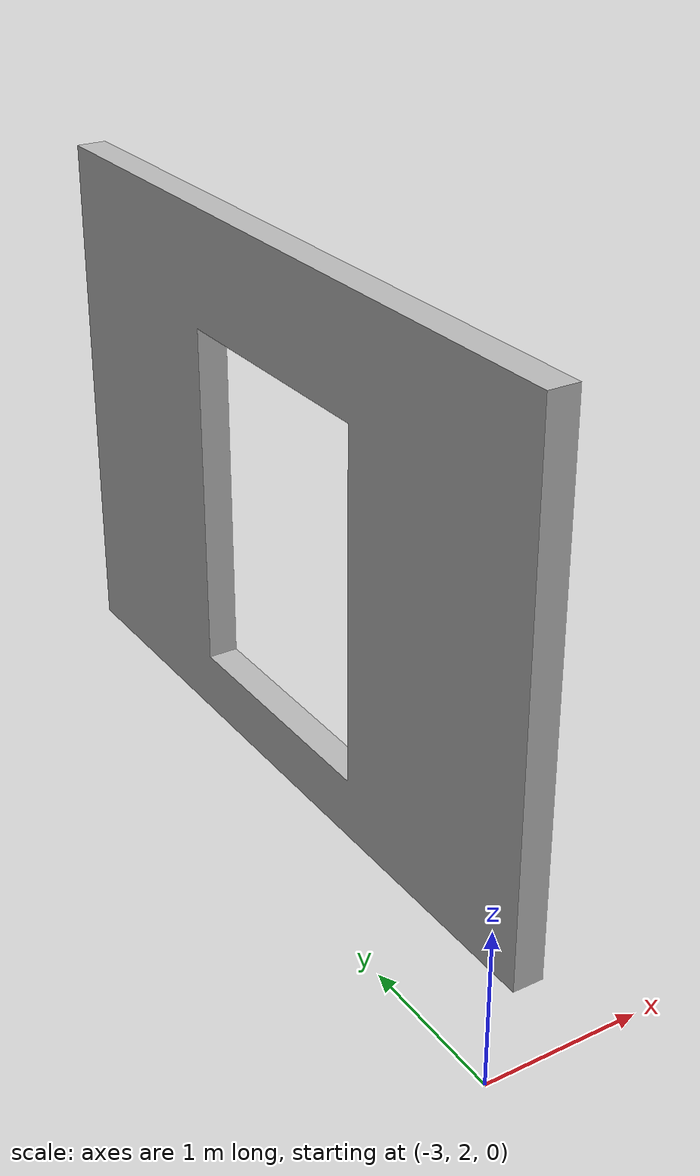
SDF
<?xml version="1.0"?>
<sdf version="1.5">
    <model name="house_wall_2">
        <static>true</static>
        <link name="link">
            <collision name="collision_wall">
                <pose>0 0 0.05 0 0 0</pose>
                <geometry>
                    <mesh>
                        <uri>model://house_scene_2_wall_2/meshes/sc2qr.dae</uri>
                    </mesh>
                </geometry>
            </collision>
            <visual name="visual_walls">
              <pose>0 0 0.05 0 0 0</pose>
              <geometry>
              <mesh>
                 <uri>model://house_scene_2_wall_2/meshes/sc2qr.dae</uri>
              </mesh>
              </geometry>
             </visual>
        </link>
    </model>
</sdf>
